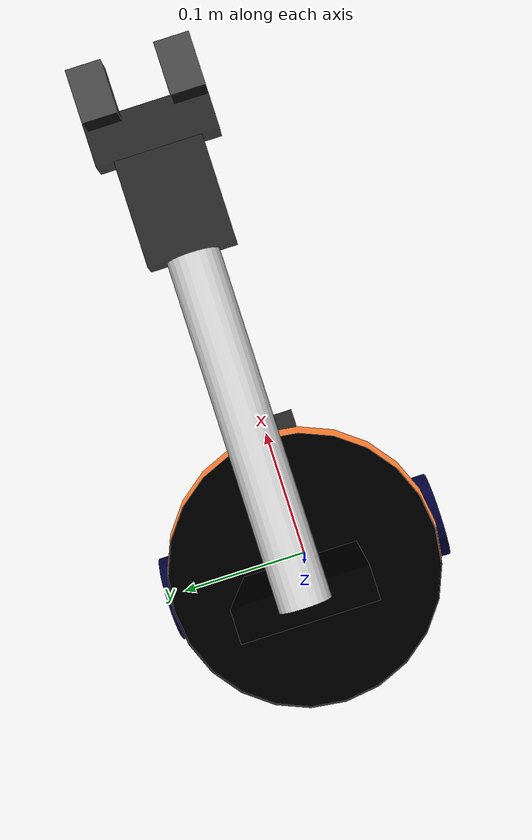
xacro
<robot name = "carbot_arm" xmlns:xacro = "http://wiki.ros.org/xacro" >
<!-- include file of inertia matrix -->
    <xacro:include filename = "head.urdf.xacro" />
<!-- the file of xacro including chassis,camera and lidar  -->
    <xacro:include filename = "carbotbase.urdf.xacro" />
    <xacro:include filename = "carbotbase_camera.urdf.xacro" />
    <xacro:include filename = "robotarm.urdf.xacro" />

    <xacro:include filename = "camera_config.urdf.xacro" />
</robot>

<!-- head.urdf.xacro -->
<robot name="base" xmlns:xacro="http://wiki.ros.org/xacro">
    <xacro:macro name="sphere_inertial_matrix" params="m r">
        <inertial>
            <mass value="${m}" />
            <inertia ixx="${2*m*r*r/5}" ixy="0" ixz="0"
                iyy="${2*m*r*r/5}" iyz="0"
                izz="${2*m*r*r/5}" />
        </inertial>
    </xacro:macro>

    <xacro:macro name="cylinder_inertial_matrix" params="m r h">
        <inertial>
            <mass value="${m}" />
            <inertia ixx="${m*(3*r*r+h*h)/12}" ixy = "0" ixz = "0"
                iyy="${m*(3*r*r+h*h)/12}" iyz = "0"
                izz="${m*r*r/2}" />
        </inertial>
    </xacro:macro>

    <xacro:macro name="Box_inertial_matrix" params="m l w h">
       <inertial>
               <mass value="${m}" />
               <inertia ixx="${m*(h*h + l*l)/12}" ixy = "0" ixz = "0"
                   iyy="${m*(w*w + l*l)/12}" iyz= "0"
                   izz="${m*(w*w + h*h)/12}" />
       </inertial>
   </xacro:macro>
</robot>

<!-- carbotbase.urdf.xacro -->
<robot name = "carbot_arm" xmlns:xacro = "http://wiki.ros.org/xacro" >

    <xacro:property name = "footprint_radius" value = "0.001" />
    <!-- 1. Add base_footprint-->
    <link name = "base_footprint">
        <visual>
            <geometry>
                <sphere radius="${footprint_radius}"/>
            </geometry>
        </visual>
    </link>

    <xacro:property name = "base_radius" value = "0.1" />
    <xacro:property name = "base_length" value = "0.08" />
    <xacro:property name = "base_mass" value = "2" />
    <xacro:property name = "distance2ground" value = "0.015" />
    <xacro:property name = "base_joint_z" value = "${base_length / 2  + distance2ground}" />
    <link name = "base_link">
        <visual>
            <geometry>
                <cylinder radius = "${base_radius}" length = "${base_length}" />
            </geometry>
            <origin xyz = "0 0 0" rpy = "0 0 0"/>

            <material name = "baselink_color">
                <color rgba = "1.0 0.5 0.2 1" />
            </material>
        </visual>
        <collision>
            <geometry>
                <cylinder radius = "${base_radius}" length = "${base_length}" />
            </geometry>
            <origin xyz = "0 0 0" rpy = "0 0 0"/>
        </collision>
        <xacro:cylinder_inertial_matrix m = "${base_mass}" r = "${base_radius}" h = "${base_length}"/>
    </link>
    <gazebo reference = "base_link">
        <material> Gazebo/Yellow</material>
    </gazebo>

    <joint name = "link2footprint" type = "fixed">
        <parent link = "base_footprint" />
        <child link = "base_link"/>
        <origin xyz = "0 0 ${base_length / 2 + distance2ground}" rpy = "0 0 0"/>
    </joint>

    <xacro:property name = "wheel_radius" value = "0.0325" />
    <xacro:property name = "wheel_length" value = "0.015" />
    <xacro:property name = "wheel_mass" value = "0.05" />
    <xacro:property name = "PI" value = "3.1415927" />
    <xacro:property name = "base_radius" value = "0.1" />
    <xacro:property name = "wheel_joint_z" value = "${(-1) * (base_length / 2 + distance2ground - wheel_radius)}" />
    <xacro:macro name = "wheel_func" params = "wheel_name flag" >
    <link name = "${wheel_name}_wheel">
        <visual>
            <geometry>
                <cylinder radius = "${wheel_radius}" length = "${wheel_length}" />
            </geometry>

            <origin xyz = "0 0 0" rpy = "${PI / 2} 0 0"/>

            <material name = "wheel_color">
                <color rgba = "0 0 0.2 1" />
            </material>
        </visual>
        <collision>
            <geometry>
                <cylinder radius = "${wheel_radius}" length = "${wheel_length}" />
            </geometry>

            <origin xyz = "0 0 0" rpy = "${PI / 2} 0 0"/>
        </collision>
        <xacro:cylinder_inertial_matrix m = "${wheel_mass}" r = "${wheel_radius}" h = "${wheel_length}" />
    </link>

    <gazebo referance = "${wheel_name}_wheel">
        <material>Gazebo/Red</material>
    </gazebo>
    <joint name = "${wheel_name}2link" type = "continuous">
        <parent link = "base_link" />
        <child link = "${wheel_name}_wheel"/>
        <origin xyz = "0 ${base_radius * flag} ${wheel_joint_z}" rpy = "0 0 0"/>
        <axis xyz = "0 1 0" />
    </joint>

    </xacro:macro>
    <xacro:wheel_func wheel_name = "left" flag = "1" />
    <xacro:wheel_func wheel_name = "right" flag = "-1" />

    <xacro:property name = "small_wheel_radius" value = "0.0075" />
    <xacro:property name = "small_wheel_mass" value = "0.01" />
    <xacro:property name = "small_joint_x" value = "0.08" />
    <xacro:property name = "small_joint_z" value = "${(-1)*(base_length / 2 + distance2ground - small_wheel_radius)}" />

    <xacro:macro name = "small_wheel_func" params = "small_wheel_name flag" >
    <link name = "${small_wheel_name}_wheel">
        <visual>
            <geometry>
                <sphere radius = "${small_wheel_radius}" />
            </geometry>

            <origin xyz = "0 0 0" rpy = "0 0 0"/>

            <material name = "wheel_color">
                <color rgba = "0 0 0 1" />
            </material>
        </visual>
        <collision>
            <geometry>
                <sphere radius = "${small_wheel_radius}" />
            </geometry>

            <origin xyz = "0 0 0" rpy = "0 0 0"/>

        </collision>
        <xacro:sphere_inertial_matrix m = "${small_wheel_mass}" r = "${small_wheel_radius}" />
    </link>

    <gazebo referance = "${small_wheel_name}_wheel">
        <material>Gazebo/Red</material>
    </gazebo>

     <joint name = "${small_wheel_name}2link" type = "continuous">
        <parent link = "base_link" />
        <child link = "${small_wheel_name}_wheel"/>
        <origin xyz = "${flag * small_joint_x} 0 ${small_joint_z}" rpy = "0 0 0"/>
        <axis xyz = "0 1 0" />
    </joint>

    </xacro:macro>
    <xacro:small_wheel_func small_wheel_name = "front" flag = "1" />
    <xacro:small_wheel_func small_wheel_name = "back" flag = "-1" />

</robot>

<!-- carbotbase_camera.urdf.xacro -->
<robot name = "carbot_arm" xmlns:xacro = "http://wiki.ros.org/xacro" >
<!-- the file of xacro including camera  -->
<!-- 1.param -->
<!--
    param:
        link : thickness,width,height
        joint : x,y,z
 -->

<!-- 2.set link and joint -->
<xacro:property  name = "camera_length" value = "0.02" />    <!--thickness(x)-->
<xacro:property  name = "camera_width" value = "0.05" />    <!--thickness(y)-->
<xacro:property  name = "camera_height" value = "0.05" />    <!--thickness(z)-->
<xacro:property  name = "camera_mass" value = "0.01" />
<xacro:property  name = "joint_camera_x" value = "0.1" />
<xacro:property  name = "joint_camera_y" value = "0" />
<xacro:property  name = "joint_camera_z" value = "${base_length / 2 + camera_height / 2 - 0.05}" />

<link name = "camera">
    <visual>
        <geometry>
            <box size = "${camera_length} ${camera_width} ${camera_height}" />
        </geometry>

        <material name = "black">
            <color rgba = "0 0 0 0.8" />
        </material>
    </visual>
    <collision>
        <geometry>
            <box size = "${camera_length} ${camera_width} ${camera_height}" />
        </geometry>
    </collision>
    <xacro:Box_inertial_matrix m = "${camera_mass}" l = "${camera_length}" w = "${camera_width}" h = "${camera_height}"/>
</link>

<gazebo referance = "camera">
    <material>Gazebo/Blue</material>
</gazebo>

<joint name = "camera2base" type = "fixed">
    <parent link = "base_link"/>
    <child link = "camera" />
    <origin xyz = "${joint_camera_x} ${joint_camera_y} ${joint_camera_z}" rpy = "0 0 0" />
</joint>
</robot>

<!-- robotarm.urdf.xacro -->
<robot name="carbot_arm" xmlns:xacro="http://wiki.ros.org/xacro">
	<link name="armbase_link">
		<visual>
			<geometry>
				<cylinder length="0.04" radius="0.095" />
			</geometry>
			<material name="black">
				<color rgba="0 0 0 1" />
			</material>
			<origin xyz="0 0 0.02" rpy="0 0 0" />
		</visual>
		<collision>
			<geometry>
				<cylinder length="0.04" radius="0.095" />
			</geometry>
		</collision>
		<xacro:cylinder_inertial_matrix m = "0.8" r = "0.095" h = "0.04"/>
	</link>
	<gazebo reference = "armbase_link">
        <material> Gazebo/Grey</material>
    </gazebo>

	<link name="turret">
		<visual>
			<geometry>
				<cylinder length="0.005" radius="0.095" />
			</geometry>
			<material name="black" />
		</visual>
		<collision>
			<geometry>
				<cylinder length="0.005" radius="0.095" />
			</geometry>
		</collision>
		<xacro:cylinder_inertial_matrix m = "0.1" r = "0.095" h = "0.005"/>
	</link>

	<link name="upperarm">
		<visual>
			<geometry>
				<box size="0.02 0.08 0.18" />
			</geometry>
			<material name="black" />
			<origin xyz="0 0 0.09" rpy="0 0 0" />
		</visual>
		<collision>
			<geometry>
				<box size="0.02 0.08 0.18" />
			</geometry>
		</collision>
		<xacro:Box_inertial_matrix m = "0.203" l = "0.02" w = "0.08" h = "0.18" />
	</link>

	<link name="forearm" >
		<visual>
			<geometry>
				<cylinder length="0.20" radius="0.015" />
			</geometry>
			<material name="silver" >
				<color rgba="0.9 0.9 0.9 1" />
			</material>
			<origin xyz="0 0 0.10" rpy="0 0 0" />
		</visual>
		<collision>
			<geometry>
				<cylinder length="0.20" radius="0.015" />
			</geometry>
		</collision>
		<xacro:cylinder_inertial_matrix m = "0.0998" r = "0.015" h = "0.20"/>
	</link>

	<link name="wrist">
		<visual>
			<geometry>
				<box size="0.02 0.05 0.06" />
			</geometry>
			<material name="black" />
			<origin xyz="0 0 0.03" rpy="0 0 0" />
		</visual>
		<collision>
			<geometry>
				<box size="0.02 0.05 0.06" />
			</geometry>
		</collision>
		<xacro:Box_inertial_matrix m = "0.0423" l = "0.02" w = "0.05" h = "0.06" />
	</link>
	<link name="hand">
		<visual>
			<geometry>
				<box size="0.02 0.07 0.025" />
			</geometry>
			<material name="black" />
			<origin xyz="0 0 0.0125" rpy="0 0 0" />
		</visual>
		<collision>
			<geometry>
				<box size="0.02 0.07 0.025" />
			</geometry>
		</collision>
		<xacro:Box_inertial_matrix m = "0.0247" l = "0.02" w = "0.07" h = "0.025" />
	</link>
	<link name="gripper_left">
		<visual>
			<geometry>
				<box size="0.02 0.02 0.03" />
			</geometry>
			<origin xyz="0 0 0.015" rpy="0 0 0" />
			<material name="gray" >
				<color rgba="0.3 0.3 0.3 1" />
			</material>
		</visual>
		<collision>
			<geometry>
				<box size="0.02 0.02 0.03" />
			</geometry>
			<origin xyz="0 0 0.015" rpy="0 0 0" />
		</collision>
		<xacro:Box_inertial_matrix m = "0.00846" l = "0.02" w = "0.02" h = "0.03" />
	</link>
	<link name="gripper_right">
		<visual>
			<geometry>
				<box size="0.02 0.02 0.03" />
			</geometry>
			<origin xyz="0 0 0.015" rpy="0 0 0" />
			<material name="gray" />
		</visual>
		<collision>
			<geometry>
				<box size="0.02 0.02 0.03" />
			</geometry>
			<origin xyz="0 0 0.015" rpy="0 0 0" />
		</collision>
		<xacro:Box_inertial_matrix m = "0.00846" l = "0.02" w = "0.02" h = "0.03" />
	</link>
	<joint name="carbase2armbase" type="fixed">
		<parent link="base_link" />
		<child link="armbase_link" />
		<origin xyz="0 0 0.045" rpy="0 0 0" />
		<axis xyz="0 0 0" />
	</joint>
	<joint name="base_link2turret" type="continuous">
		<parent link="armbase_link" />
		<child link="turret" />
		<origin xyz="0 0 0.045" rpy="0 0 0" />
		<axis xyz="0 0 -1" />
	</joint>
	<joint name="turret2upperarm" type="continuous">
		<parent link="turret" />
		<child link="upperarm" />
		<origin xyz="0 0 0.02" rpy="0 0 0" />
		<axis xyz="0 -1 0" />
	</joint>
	<joint name="upperarm2forearm" type="continuous">
		<parent link="upperarm" />
		<child link="forearm" />
		<origin xyz="0 0 0.18" rpy="0 1.5708 0" />
		<axis xyz="0 1 0" />
	</joint>
	<joint name="forearm2wrist" type="continuous">
		<parent link="forearm" />
		<child link="wrist" />
		<origin xyz="0 0 0.20" rpy="0 0 0" />
		<axis xyz="0 -1 0" />
	</joint>
	<joint name="wrist2hand" type="continuous">
		<parent link="wrist" />
		<child link="hand" />
		<origin xyz="0 0 0.06" rpy="0 0 0" />
		<axis xyz="0 0 1" />
	</joint>
	<joint name="gripper_left2hand" type="prismatic">
		<parent link="hand" />
		<child link="gripper_left" />
		<origin xyz="0 0.025 0.025" rpy="0 0 0" />
		<limit effort="1.0" lower="-0.02" upper="0.02" velocity="0.5" />
		<axis xyz="0 -1 0" />
	</joint>
	<joint name="gripper_right2hand" type="prismatic">
		<parent link="hand" />
		<child link="gripper_right" />
		<origin xyz="0 -0.025 0.025" rpy="0 0 0" />
		<limit effort="1.0" lower="0.02" upper="-0.02" velocity="0.5" />
		<axis xyz="0 1 0" />
                <mimic joint="gripper_left2hand" multiplier="1" offset="0"/>
	</joint>
</robot>
